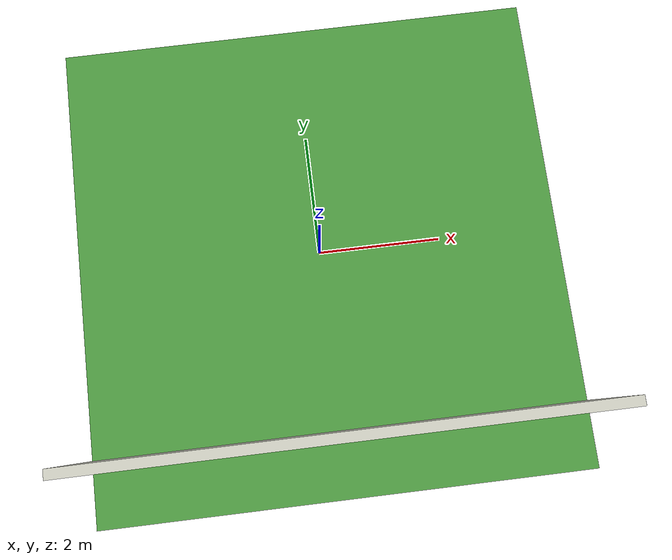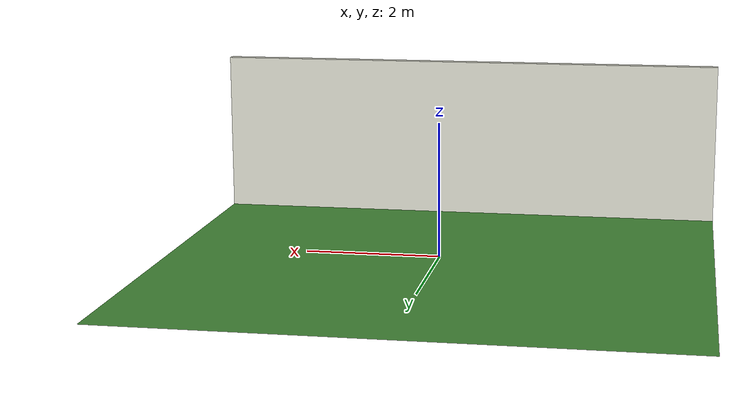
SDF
<sdf version="1.6">
 <world name="default">
  <light name="sun" type="directional">
   <pose>0 0 10 0 -0 0</pose>
   <diffuse>0.8 0.8 0.8 1</diffuse>
   <specular>0.2 0.2 0.2 1</specular>
   <attenuation>
    <range>1000</range>
    <constant>0.9</constant>
    <linear>0.01</linear>
    <quadratic>0.001</quadratic>
   </attenuation>
   <direction>-0.5 0.1 -0.9</direction>
  </light>
  <gravity>0 0 -9.8</gravity>
  <magnetic_field>6e-06 2.3e-05 -4.2e-05</magnetic_field>
  <atmosphere type="adiabatic"/>
  <physics name="default_physics" default="0" type="ode">
   <max_step_size>0.001</max_step_size>
   <real_time_factor>1</real_time_factor>
   <real_time_update_rate>500</real_time_update_rate>
  </physics>
  <scene><ambient>0.4 0.4 0.4 1</ambient><background>0.7 0.7 0.7 1</background><shadows>1</shadows></scene>
  <audio><device>default</device></audio>
  <spherical_coordinates>
   <surface_model>EARTH_WGS84</surface_model>
   <latitude_deg>0</latitude_deg>
   <longitude_deg>0</longitude_deg>
   <elevation>0</elevation>
   <heading_deg>0</heading_deg>
  </spherical_coordinates>
  <model name="Arena">
   <pose>0 -3 -0 0 -0 0</pose>
   <static>1</static>
   <link name="Floor">
    <collision name="collision_floor">
     <geometry><box><size>8 8 0.01</size></box></geometry>
     <surface><friction><ode><mu>100</mu><mu2>50</mu2></ode></friction></surface>
    </collision>
    <visual name="visual_floor_0">
     <geometry><box><size>8 8 0</size></box></geometry>
     <material>
      <script><uri>file://media/materials/scripts/gazebo.material</uri><name>Gazebo/Grass</name></script>
     </material>
    </visual>
    <pose>0 3 0 0 -0 0</pose>
   </link>
   <link name="Wall_0">
    <collision name="Wall_0_Collision">
     <geometry><box><size>8 0.15 2.5</size></box></geometry>
     <pose>0 0 1.25 0 -0 0</pose>
    </collision>
    <visual name="Wall_0_Visual">
     <pose>0 0 1.25 0 -0 0</pose>
     <geometry><box><size>8 0.15 2.5</size></box></geometry>
     <material>
      <script><uri>file://media/materials/scripts/gazebo.material</uri><name>Gazebo/PaintedWall</name></script>
      <ambient>1 1 1 1</ambient>
     </material>
     <meta><layer>0</layer></meta>
    </visual>
   </link>
   <link name="Wall_1">
    <collision name="Wall_1_Collision">
     <geometry><box><size>8 0.15 2.5</size></box></geometry>
     <pose>0 0 1.25 0 -0 0</pose>
    </collision>
    <visual name="Wall_1_Visual">
     <pose>0 0 1.25 0 -0 0</pose>
     <geometry><box><size>8 0.15 2.5</size></box></geometry>
     <material>
      <script><uri>file://media/materials/scripts/gazebo.material</uri><name>Gazebo/PaintedWall</name></script>
      <ambient>1 1 1 1</ambient>
     </material>
     <meta><layer>0</layer></meta>
    </visual>
   </link>
   <link name="Wall_2">
    <collision name="Wall_2_Collision">
     <geometry><box><size>8 0.15 2.5</size></box></geometry>
     <pose>0 0 1.25 0 -0 0</pose>
    </collision>
    <visual name="Wall_2_Visual">
     <pose>0 0 1.25 0 -0 0</pose>
     <geometry><box><size>8 0.15 2.5</size></box></geometry>
     <material>
      <script><uri>file://media/materials/scripts/gazebo.material</uri><name>Gazebo/PaintedWall</name></script>
      <ambient>1 1 1 1</ambient>
     </material>
     <meta><layer>0</layer></meta>
    </visual>
   </link>
   <link name="Wall_3">
    <collision name="Wall_3_Collision">
     <geometry><box><size>8 0.15 2.5</size></box></geometry>
     <pose>0 0 1.25 0 -0 0</pose>
    </collision>
    <visual name="Wall_3_Visual">
     <pose>0 0 1.25 0 -0 0</pose>
     <geometry><box><size>8 0.15 2.5</size></box></geometry>
     <material>
      <script><uri>file://media/materials/scripts/gazebo.material</uri><name>Gazebo/PaintedWall</name></script>
      <ambient>1 1 1 1</ambient>
     </material>
     <meta><layer>0</layer></meta>
    </visual>
   </link>
  </model>
 </world>
</sdf>
